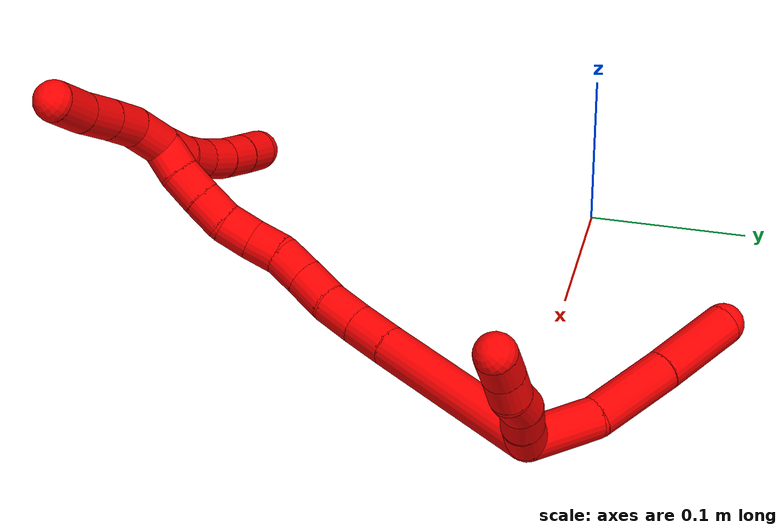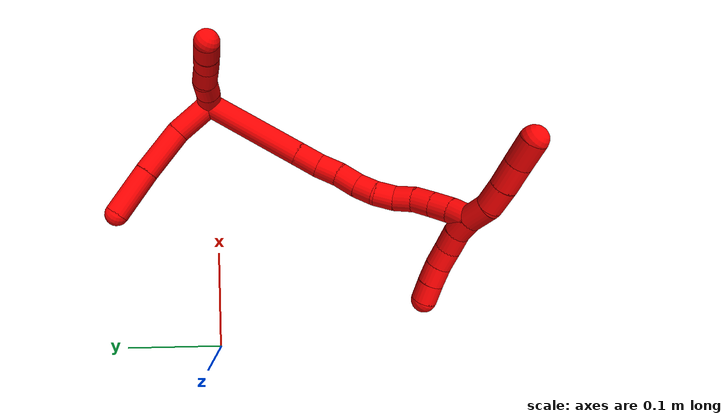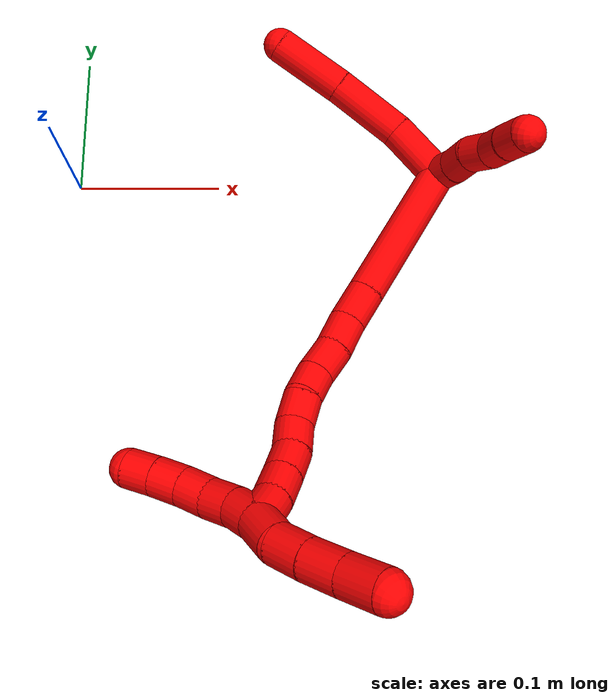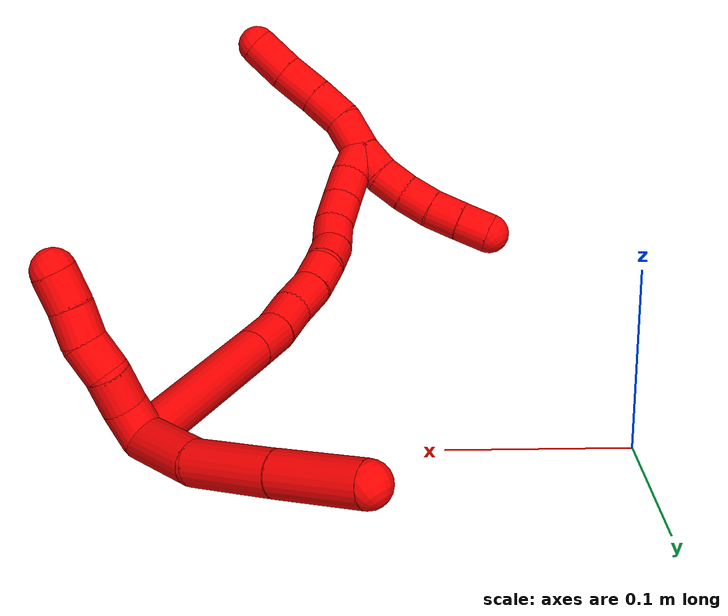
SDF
<sdf version="1.7">
 <world name="default">
  <model name="2">
   <static>0</static>
   <link name="2">
    <collision name="collision-cylinder-e_1_2_8">
     <pose>-0.014547 0.005423 -0.015568 -2.80637 -0.72302 2.3001</pose>
     <geometry><cylinder><radius>0.0125</radius><length>0.043972</length></cylinder></geometry>
     <surface>
      <friction><ode><mu>1.16</mu><mu2>1.16</mu2><slip1>0</slip1><slip2>0</slip2></ode></friction>
      <contact><ode><kp>1e+06</kp><kd>1</kd><max_vel>0</max_vel><min_depth>0.001</min_depth></ode></contact>
     </surface>
    </collision>
    <visual name="visual-cylinder-e_1_2_8">
     <pose>-0.014547 0.005423 -0.015568 -2.80637 -0.72302 2.3001</pose>
     <geometry><cylinder><radius>0.0125</radius><length>0.043972</length></cylinder></geometry>
     <material><ambient>1 0 0 1</ambient></material>
    </visual>
    <collision name="collision-cylinder-e_2_8_9">
     <pose>-0.050276 0.012065 -0.047183 -3.06583 -0.921062 2.9891</pose>
     <geometry><cylinder><radius>0.0125</radius><length>0.053205</length></cylinder></geometry>
     <surface>
      <friction><ode><mu>1.16</mu><mu2>1.16</mu2><slip1>0</slip1><slip2>0</slip2></ode></friction>
      <contact><ode><kp>1e+06</kp><kd>1</kd><max_vel>0</max_vel><min_depth>0.001</min_depth></ode></contact>
     </surface>
    </collision>
    <visual name="visual-cylinder-e_2_8_9">
     <pose>-0.050276 0.012065 -0.047183 -3.06583 -0.921062 2.9891</pose>
     <geometry><cylinder><radius>0.0125</radius><length>0.053205</length></cylinder></geometry>
     <material><ambient>1 0 0 1</ambient></material>
    </visual>
    <collision name="collision-cylinder-e_3_9_6">
     <pose>-0.092477 0.013211 -0.079224 3.13706 -0.920352 -3.13245</pose>
     <geometry><cylinder><radius>0.0125</radius><length>0.052823</length></cylinder></geometry>
     <surface>
      <friction><ode><mu>1.16</mu><mu2>1.16</mu2><slip1>0</slip1><slip2>0</slip2></ode></friction>
      <contact><ode><kp>1e+06</kp><kd>1</kd><max_vel>0</max_vel><min_depth>0.001</min_depth></ode></contact>
     </surface>
    </collision>
    <visual name="visual-cylinder-e_3_9_6">
     <pose>-0.092477 0.013211 -0.079224 3.13706 -0.920352 -3.13245</pose>
     <geometry><cylinder><radius>0.0125</radius><length>0.052823</length></cylinder></geometry>
     <material><ambient>1 0 0 1</ambient></material>
    </visual>
    <collision name="collision-cylinder-e_1_2_10">
     <pose>-0.003016 0.003396 0.008909 -0.364231 -0.306392 0.056854</pose>
     <geometry><cylinder><radius>0.0125</radius><length>0.02</length></cylinder></geometry>
     <surface>
      <friction><ode><mu>1.16</mu><mu2>1.16</mu2><slip1>0</slip1><slip2>0</slip2></ode></friction>
      <contact><ode><kp>1e+06</kp><kd>1</kd><max_vel>0</max_vel><min_depth>0.001</min_depth></ode></contact>
     </surface>
    </collision>
    <visual name="visual-cylinder-e_1_2_10">
     <pose>-0.003016 0.003396 0.008909 -0.364231 -0.306392 0.056854</pose>
     <geometry><cylinder><radius>0.0125</radius><length>0.02</length></cylinder></geometry>
     <material><ambient>1 0 0 1</ambient></material>
    </visual>
    <collision name="collision-cylinder-e_2_10_11">
     <pose>-0.0102 0.010452 0.026139 -0.414233 -0.429856 0.091678</pose>
     <geometry><cylinder><radius>0.0125</radius><length>0.02</length></cylinder></geometry>
     <surface>
      <friction><ode><mu>1.16</mu><mu2>1.16</mu2><slip1>0</slip1><slip2>0</slip2></ode></friction>
      <contact><ode><kp>1e+06</kp><kd>1</kd><max_vel>0</max_vel><min_depth>0.001</min_depth></ode></contact>
     </surface>
    </collision>
    <visual name="visual-cylinder-e_2_10_11">
     <pose>-0.0102 0.010452 0.026139 -0.414233 -0.429856 0.091678</pose>
     <geometry><cylinder><radius>0.0125</radius><length>0.02</length></cylinder></geometry>
     <material><ambient>1 0 0 1</ambient></material>
    </visual>
    <collision name="collision-cylinder-e_3_11_12">
     <pose>-0.015705 0.016692 0.044028 -0.263578 -0.134167 0.017811</pose>
     <geometry><cylinder><radius>0.0125</radius><length>0.02</length></cylinder></geometry>
     <surface>
      <friction><ode><mu>1.16</mu><mu2>1.16</mu2><slip1>0</slip1><slip2>0</slip2></ode></friction>
      <contact><ode><kp>1e+06</kp><kd>1</kd><max_vel>0</max_vel><min_depth>0.001</min_depth></ode></contact>
     </surface>
    </collision>
    <visual name="visual-cylinder-e_3_11_12">
     <pose>-0.015705 0.016692 0.044028 -0.263578 -0.134167 0.017811</pose>
     <geometry><cylinder><radius>0.0125</radius><length>0.02</length></cylinder></geometry>
     <material><ambient>1 0 0 1</ambient></material>
    </visual>
    <collision name="collision-cylinder-e_4_12_13">
     <pose>-0.021189 0.020982 0.062534 -0.188789 -0.427609 0.041107</pose>
     <geometry><cylinder><radius>0.0125</radius><length>0.02</length></cylinder></geometry>
     <surface>
      <friction><ode><mu>1.16</mu><mu2>1.16</mu2><slip1>0</slip1><slip2>0</slip2></ode></friction>
      <contact><ode><kp>1e+06</kp><kd>1</kd><max_vel>0</max_vel><min_depth>0.001</min_depth></ode></contact>
     </surface>
    </collision>
    <visual name="visual-cylinder-e_4_12_13">
     <pose>-0.021189 0.020982 0.062534 -0.188789 -0.427609 0.041107</pose>
     <geometry><cylinder><radius>0.0125</radius><length>0.02</length></cylinder></geometry>
     <material><ambient>1 0 0 1</ambient></material>
    </visual>
    <collision name="collision-cylinder-e_5_13_5">
     <pose>-0.028779 0.024977 0.080578 -0.246112 -0.351461 0.043915</pose>
     <geometry><cylinder><radius>0.0125</radius><length>0.02</length></cylinder></geometry>
     <surface>
      <friction><ode><mu>1.16</mu><mu2>1.16</mu2><slip1>0</slip1><slip2>0</slip2></ode></friction>
      <contact><ode><kp>1e+06</kp><kd>1</kd><max_vel>0</max_vel><min_depth>0.001</min_depth></ode></contact>
     </surface>
    </collision>
    <visual name="visual-cylinder-e_5_13_5">
     <pose>-0.028779 0.024977 0.080578 -0.246112 -0.351461 0.043915</pose>
     <geometry><cylinder><radius>0.0125</radius><length>0.02</length></cylinder></geometry>
     <material><ambient>1 0 0 1</ambient></material>
    </visual>
    <collision name="collision-cylinder-e_1_2_14">
     <pose>-0.005306 -0.052286 0.011813 1.3486 -0.098656 -0.078877</pose>
     <geometry><cylinder><radius>0.0125</radius><length>0.107731</length></cylinder></geometry>
     <surface>
      <friction><ode><mu>1.16</mu><mu2>1.16</mu2><slip1>0</slip1><slip2>0</slip2></ode></friction>
      <contact><ode><kp>1e+06</kp><kd>1</kd><max_vel>0</max_vel><min_depth>0.001</min_depth></ode></contact>
     </surface>
    </collision>
    <visual name="visual-cylinder-e_1_2_14">
     <pose>-0.005306 -0.052286 0.011813 1.3486 -0.098656 -0.078877</pose>
     <geometry><cylinder><radius>0.0125</radius><length>0.107731</length></cylinder></geometry>
     <material><ambient>1 0 0 1</ambient></material>
    </visual>
    <collision name="collision-cylinder-e_2_14_15">
     <pose>-0.012053 -0.116964 0.02655 1.33909 -0.1128 -0.089318</pose>
     <geometry><cylinder><radius>0.0125</radius><length>0.025628</length></cylinder></geometry>
     <surface>
      <friction><ode><mu>1.16</mu><mu2>1.16</mu2><slip1>0</slip1><slip2>0</slip2></ode></friction>
      <contact><ode><kp>1e+06</kp><kd>1</kd><max_vel>0</max_vel><min_depth>0.001</min_depth></ode></contact>
     </surface>
    </collision>
    <visual name="visual-cylinder-e_2_14_15">
     <pose>-0.012053 -0.116964 0.02655 1.33909 -0.1128 -0.089318</pose>
     <geometry><cylinder><radius>0.0125</radius><length>0.025628</length></cylinder></geometry>
     <material><ambient>1 0 0 1</ambient></material>
    </visual>
    <collision name="collision-cylinder-e_3_15_16">
     <pose>-0.015262 -0.139974 0.033925 1.17384 -0.152224 -0.101354</pose>
     <geometry><cylinder><radius>0.0125</radius><length>0.023296</length></cylinder></geometry>
     <surface>
      <friction><ode><mu>1.16</mu><mu2>1.16</mu2><slip1>0</slip1><slip2>0</slip2></ode></friction>
      <contact><ode><kp>1e+06</kp><kd>1</kd><max_vel>0</max_vel><min_depth>0.001</min_depth></ode></contact>
     </surface>
    </collision>
    <visual name="visual-cylinder-e_3_15_16">
     <pose>-0.015262 -0.139974 0.033925 1.17384 -0.152224 -0.101354</pose>
     <geometry><cylinder><radius>0.0125</radius><length>0.023296</length></cylinder></geometry>
     <material><ambient>1 0 0 1</ambient></material>
    </visual>
    <collision name="collision-cylinder-e_4_16_17">
     <pose>-0.020222 -0.161043 0.042016 1.23558 -0.280958 -0.200294</pose>
     <geometry><cylinder><radius>0.0125</radius><length>0.023037</length></cylinder></geometry>
     <surface>
      <friction><ode><mu>1.16</mu><mu2>1.16</mu2><slip1>0</slip1><slip2>0</slip2></ode></friction>
      <contact><ode><kp>1e+06</kp><kd>1</kd><max_vel>0</max_vel><min_depth>0.001</min_depth></ode></contact>
     </surface>
    </collision>
    <visual name="visual-cylinder-e_4_16_17">
     <pose>-0.020222 -0.161043 0.042016 1.23558 -0.280958 -0.200294</pose>
     <geometry><cylinder><radius>0.0125</radius><length>0.023037</length></cylinder></geometry>
     <material><ambient>1 0 0 1</ambient></material>
    </visual>
    <collision name="collision-cylinder-e_5_17_18">
     <pose>-0.026145 -0.179874 0.050472 1.04931 -0.275188 -0.159939</pose>
     <geometry><cylinder><radius>0.0125</radius><length>0.020087</length></cylinder></geometry>
     <surface>
      <friction><ode><mu>1.16</mu><mu2>1.16</mu2><slip1>0</slip1><slip2>0</slip2></ode></friction>
      <contact><ode><kp>1e+06</kp><kd>1</kd><max_vel>0</max_vel><min_depth>0.001</min_depth></ode></contact>
     </surface>
    </collision>
    <visual name="visual-cylinder-e_5_17_18">
     <pose>-0.026145 -0.179874 0.050472 1.04931 -0.275188 -0.159939</pose>
     <geometry><cylinder><radius>0.0125</radius><length>0.020087</length></cylinder></geometry>
     <material><ambient>1 0 0 1</ambient></material>
    </visual>
    <collision name="collision-cylinder-e_6_18_19">
     <pose>-0.029014 -0.19713 0.060081 1.07555 -0.013888 -0.008283</pose>
     <geometry><cylinder><radius>0.0125</radius><length>0.020175</length></cylinder></geometry>
     <surface>
      <friction><ode><mu>1.16</mu><mu2>1.16</mu2><slip1>0</slip1><slip2>0</slip2></ode></friction>
      <contact><ode><kp>1e+06</kp><kd>1</kd><max_vel>0</max_vel><min_depth>0.001</min_depth></ode></contact>
     </surface>
    </collision>
    <visual name="visual-cylinder-e_6_18_19">
     <pose>-0.029014 -0.19713 0.060081 1.07555 -0.013888 -0.008283</pose>
     <geometry><cylinder><radius>0.0125</radius><length>0.020175</length></cylinder></geometry>
     <material><ambient>1 0 0 1</ambient></material>
    </visual>
    <collision name="collision-cylinder-e_7_19_20">
     <pose>-0.02986 -0.213064 0.071933 0.785496 -0.070578 -0.029249</pose>
     <geometry><cylinder><radius>0.0125</radius><length>0.020016</length></cylinder></geometry>
     <surface>
      <friction><ode><mu>1.16</mu><mu2>1.16</mu2><slip1>0</slip1><slip2>0</slip2></ode></friction>
      <contact><ode><kp>1e+06</kp><kd>1</kd><max_vel>0</max_vel><min_depth>0.001</min_depth></ode></contact>
     </surface>
    </collision>
    <visual name="visual-cylinder-e_7_19_20">
     <pose>-0.02986 -0.213064 0.071933 0.785496 -0.070578 -0.029249</pose>
     <geometry><cylinder><radius>0.0125</radius><length>0.020016</length></cylinder></geometry>
     <material><ambient>1 0 0 1</ambient></material>
    </visual>
    <collision name="collision-cylinder-e_8_20_21">
     <pose>-0.03369 -0.227275 0.085254 0.851531 -0.317513 -0.144961</pose>
     <geometry><cylinder><radius>0.0125</radius><length>0.020013</length></cylinder></geometry>
     <surface>
      <friction><ode><mu>1.16</mu><mu2>1.16</mu2><slip1>0</slip1><slip2>0</slip2></ode></friction>
      <contact><ode><kp>1e+06</kp><kd>1</kd><max_vel>0</max_vel><min_depth>0.001</min_depth></ode></contact>
     </surface>
    </collision>
    <visual name="visual-cylinder-e_8_20_21">
     <pose>-0.03369 -0.227275 0.085254 0.851531 -0.317513 -0.144961</pose>
     <geometry><cylinder><radius>0.0125</radius><length>0.020013</length></cylinder></geometry>
     <material><ambient>1 0 0 1</ambient></material>
    </visual>
    <collision name="collision-cylinder-e_9_21_22">
     <pose>-0.040307 -0.241437 0.097742 0.844667 -0.356652 -0.161638</pose>
     <geometry><cylinder><radius>0.0125</radius><length>0.02001</length></cylinder></geometry>
     <surface>
      <friction><ode><mu>1.16</mu><mu2>1.16</mu2><slip1>0</slip1><slip2>0</slip2></ode></friction>
      <contact><ode><kp>1e+06</kp><kd>1</kd><max_vel>0</max_vel><min_depth>0.001</min_depth></ode></contact>
     </surface>
    </collision>
    <visual name="visual-cylinder-e_9_21_22">
     <pose>-0.040307 -0.241437 0.097742 0.844667 -0.356652 -0.161638</pose>
     <geometry><cylinder><radius>0.0125</radius><length>0.02001</length></cylinder></geometry>
     <material><ambient>1 0 0 1</ambient></material>
    </visual>
    <collision name="collision-cylinder-e_10_22_1">
     <pose>-0.048775 -0.255071 0.109577 0.868047 -0.520461 -0.245589</pose>
     <geometry><cylinder><radius>0.0125</radius><length>0.020008</length></cylinder></geometry>
     <surface>
      <friction><ode><mu>1.16</mu><mu2>1.16</mu2><slip1>0</slip1><slip2>0</slip2></ode></friction>
      <contact><ode><kp>1e+06</kp><kd>1</kd><max_vel>0</max_vel><min_depth>0.001</min_depth></ode></contact>
     </surface>
    </collision>
    <visual name="visual-cylinder-e_10_22_1">
     <pose>-0.048775 -0.255071 0.109577 0.868047 -0.520461 -0.245589</pose>
     <geometry><cylinder><radius>0.0125</radius><length>0.020008</length></cylinder></geometry>
     <material><ambient>1 0 0 1</ambient></material>
    </visual>
    <collision name="collision-cylinder-e_1_1_23">
     <pose>-0.054285 -0.262701 0.105252 3.04051 -0.05354 -0.973713</pose>
     <geometry><cylinder><radius>0.0125</radius><length>0.02</length></cylinder></geometry>
     <surface>
      <friction><ode><mu>1.16</mu><mu2>1.16</mu2><slip1>0</slip1><slip2>0</slip2></ode></friction>
      <contact><ode><kp>1e+06</kp><kd>1</kd><max_vel>0</max_vel><min_depth>0.001</min_depth></ode></contact>
     </surface>
    </collision>
    <visual name="visual-cylinder-e_1_1_23">
     <pose>-0.054285 -0.262701 0.105252 3.04051 -0.05354 -0.973713</pose>
     <geometry><cylinder><radius>0.0125</radius><length>0.02</length></cylinder></geometry>
     <material><ambient>1 0 0 1</ambient></material>
    </visual>
    <collision name="collision-cylinder-e_2_23_24">
     <pose>-0.056809 -0.266389 0.085891 2.86459 -0.200222 -1.24882</pose>
     <geometry><cylinder><radius>0.0125</radius><length>0.02</length></cylinder></geometry>
     <surface>
      <friction><ode><mu>1.16</mu><mu2>1.16</mu2><slip1>0</slip1><slip2>0</slip2></ode></friction>
      <contact><ode><kp>1e+06</kp><kd>1</kd><max_vel>0</max_vel><min_depth>0.001</min_depth></ode></contact>
     </surface>
    </collision>
    <visual name="visual-cylinder-e_2_23_24">
     <pose>-0.056809 -0.266389 0.085891 2.86459 -0.200222 -1.24882</pose>
     <geometry><cylinder><radius>0.0125</radius><length>0.02</length></cylinder></geometry>
     <material><ambient>1 0 0 1</ambient></material>
    </visual>
    <collision name="collision-cylinder-e_3_24_25">
     <pose>-0.062145 -0.271246 0.067295 2.9085 -0.341272 -1.948</pose>
     <geometry><cylinder><radius>0.0125</radius><length>0.02</length></cylinder></geometry>
     <surface>
      <friction><ode><mu>1.16</mu><mu2>1.16</mu2><slip1>0</slip1><slip2>0</slip2></ode></friction>
      <contact><ode><kp>1e+06</kp><kd>1</kd><max_vel>0</max_vel><min_depth>0.001</min_depth></ode></contact>
     </surface>
    </collision>
    <visual name="visual-cylinder-e_3_24_25">
     <pose>-0.062145 -0.271246 0.067295 2.9085 -0.341272 -1.948</pose>
     <geometry><cylinder><radius>0.0125</radius><length>0.02</length></cylinder></geometry>
     <material><ambient>1 0 0 1</ambient></material>
    </visual>
    <collision name="collision-cylinder-e_4_25_26">
     <pose>-0.069742 -0.276251 0.049528 2.82378 -0.438982 -1.8957</pose>
     <geometry><cylinder><radius>0.0125</radius><length>0.02</length></cylinder></geometry>
     <surface>
      <friction><ode><mu>1.16</mu><mu2>1.16</mu2><slip1>0</slip1><slip2>0</slip2></ode></friction>
      <contact><ode><kp>1e+06</kp><kd>1</kd><max_vel>0</max_vel><min_depth>0.001</min_depth></ode></contact>
     </surface>
    </collision>
    <visual name="visual-cylinder-e_4_25_26">
     <pose>-0.069742 -0.276251 0.049528 2.82378 -0.438982 -1.8957</pose>
     <geometry><cylinder><radius>0.0125</radius><length>0.02</length></cylinder></geometry>
     <material><ambient>1 0 0 1</ambient></material>
    </visual>
    <collision name="collision-cylinder-e_5_26_4">
     <pose>-0.078211 -0.282324 0.032464 2.77561 -0.435541 -1.74859</pose>
     <geometry><cylinder><radius>0.0125</radius><length>0.02</length></cylinder></geometry>
     <surface>
      <friction><ode><mu>1.16</mu><mu2>1.16</mu2><slip1>0</slip1><slip2>0</slip2></ode></friction>
      <contact><ode><kp>1e+06</kp><kd>1</kd><max_vel>0</max_vel><min_depth>0.001</min_depth></ode></contact>
     </surface>
    </collision>
    <visual name="visual-cylinder-e_5_26_4">
     <pose>-0.078211 -0.282324 0.032464 2.77561 -0.435541 -1.74859</pose>
     <geometry><cylinder><radius>0.0125</radius><length>0.02</length></cylinder></geometry>
     <material><ambient>1 0 0 1</ambient></material>
    </visual>
    <collision name="collision-cylinder-e_1_1_27">
     <pose>-0.054331 -0.262612 0.127545 0.074201 -0.046841 -0.001739</pose>
     <geometry><cylinder><radius>0.0125</radius><length>0.024812</length></cylinder></geometry>
     <surface>
      <friction><ode><mu>1.16</mu><mu2>1.16</mu2><slip1>0</slip1><slip2>0</slip2></ode></friction>
      <contact><ode><kp>1e+06</kp><kd>1</kd><max_vel>0</max_vel><min_depth>0.001</min_depth></ode></contact>
     </surface>
    </collision>
    <visual name="visual-cylinder-e_1_1_27">
     <pose>-0.054331 -0.262612 0.127545 0.074201 -0.046841 -0.001739</pose>
     <geometry><cylinder><radius>0.0125</radius><length>0.024812</length></cylinder></geometry>
     <material><ambient>1 0 0 1</ambient></material>
    </visual>
    <collision name="collision-cylinder-e_2_27_28">
     <pose>-0.053107 -0.261328 0.151477 -0.188099 0.151997 -0.014365</pose>
     <geometry><cylinder><radius>0.0125</radius><length>0.023838</length></cylinder></geometry>
     <surface>
      <friction><ode><mu>1.16</mu><mu2>1.16</mu2><slip1>0</slip1><slip2>0</slip2></ode></friction>
      <contact><ode><kp>1e+06</kp><kd>1</kd><max_vel>0</max_vel><min_depth>0.001</min_depth></ode></contact>
     </surface>
    </collision>
    <visual name="visual-cylinder-e_2_27_28">
     <pose>-0.053107 -0.261328 0.151477 -0.188099 0.151997 -0.014365</pose>
     <geometry><cylinder><radius>0.0125</radius><length>0.023838</length></cylinder></geometry>
     <material><ambient>1 0 0 1</ambient></material>
    </visual>
    <collision name="collision-cylinder-e_3_28_29">
     <pose>-0.049102 -0.256151 0.175098 -0.242024 0.175431 -0.021388</pose>
     <geometry><cylinder><radius>0.0125</radius><length>0.025205</length></cylinder></geometry>
     <surface>
      <friction><ode><mu>1.16</mu><mu2>1.16</mu2><slip1>0</slip1><slip2>0</slip2></ode></friction>
      <contact><ode><kp>1e+06</kp><kd>1</kd><max_vel>0</max_vel><min_depth>0.001</min_depth></ode></contact>
     </surface>
    </collision>
    <visual name="visual-cylinder-e_3_28_29">
     <pose>-0.049102 -0.256151 0.175098 -0.242024 0.175431 -0.021388</pose>
     <geometry><cylinder><radius>0.0125</radius><length>0.025205</length></cylinder></geometry>
     <material><ambient>1 0 0 1</ambient></material>
    </visual>
    <collision name="collision-cylinder-e_4_29_3">
     <pose>-0.045765 -0.249949 0.199762 -0.250449 0.08714 -0.010976</pose>
     <geometry><cylinder><radius>0.0125</radius><length>0.026145</length></cylinder></geometry>
     <surface>
      <friction><ode><mu>1.16</mu><mu2>1.16</mu2><slip1>0</slip1><slip2>0</slip2></ode></friction>
      <contact><ode><kp>1e+06</kp><kd>1</kd><max_vel>0</max_vel><min_depth>0.001</min_depth></ode></contact>
     </surface>
    </collision>
    <visual name="visual-cylinder-e_4_29_3">
     <pose>-0.045765 -0.249949 0.199762 -0.250449 0.08714 -0.010976</pose>
     <geometry><cylinder><radius>0.0125</radius><length>0.026145</length></cylinder></geometry>
     <material><ambient>1 0 0 1</ambient></material>
    </visual>
    <collision name="collision-sphere-3">
     <pose>-0.044628 -0.246722 0.212379 0 -0 0</pose>
     <geometry><sphere><radius>0.0125</radius></sphere></geometry>
     <surface>
      <friction><ode><mu>1.16</mu><mu2>1.16</mu2><slip1>0</slip1><slip2>0</slip2></ode></friction>
      <contact><ode><kp>1e+06</kp><kd>1</kd><max_vel>0</max_vel><min_depth>0.001</min_depth></ode></contact>
     </surface>
    </collision>
    <visual name="visual-sphere-3">
     <pose>-0.044628 -0.246722 0.212379 0 -0 0</pose>
     <geometry><sphere><radius>0.0125</radius></sphere></geometry>
     <material><ambient>1 0 0 1</ambient></material>
    </visual>
    <collision name="collision-sphere-29">
     <pose>-0.046903 -0.253177 0.187146 0 -0 0</pose>
     <geometry><sphere><radius>0.0125</radius></sphere></geometry>
     <surface>
      <friction><ode><mu>1.16</mu><mu2>1.16</mu2><slip1>0</slip1><slip2>0</slip2></ode></friction>
      <contact><ode><kp>1e+06</kp><kd>1</kd><max_vel>0</max_vel><min_depth>0.001</min_depth></ode></contact>
     </surface>
    </collision>
    <visual name="visual-sphere-29">
     <pose>-0.046903 -0.253177 0.187146 0 -0 0</pose>
     <geometry><sphere><radius>0.0125</radius></sphere></geometry>
     <material><ambient>1 0 0 1</ambient></material>
    </visual>
    <collision name="collision-sphere-28">
     <pose>-0.051302 -0.259125 0.163051 0 -0 0</pose>
     <geometry><sphere><radius>0.0125</radius></sphere></geometry>
     <surface>
      <friction><ode><mu>1.16</mu><mu2>1.16</mu2><slip1>0</slip1><slip2>0</slip2></ode></friction>
      <contact><ode><kp>1e+06</kp><kd>1</kd><max_vel>0</max_vel><min_depth>0.001</min_depth></ode></contact>
     </surface>
    </collision>
    <visual name="visual-sphere-28">
     <pose>-0.051302 -0.259125 0.163051 0 -0 0</pose>
     <geometry><sphere><radius>0.0125</radius></sphere></geometry>
     <material><ambient>1 0 0 1</ambient></material>
    </visual>
    <collision name="collision-sphere-27">
     <pose>-0.054911 -0.263531 0.139903 0 -0 0</pose>
     <geometry><sphere><radius>0.0125</radius></sphere></geometry>
     <surface>
      <friction><ode><mu>1.16</mu><mu2>1.16</mu2><slip1>0</slip1><slip2>0</slip2></ode></friction>
      <contact><ode><kp>1e+06</kp><kd>1</kd><max_vel>0</max_vel><min_depth>0.001</min_depth></ode></contact>
     </surface>
    </collision>
    <visual name="visual-sphere-27">
     <pose>-0.054911 -0.263531 0.139903 0 -0 0</pose>
     <geometry><sphere><radius>0.0125</radius></sphere></geometry>
     <material><ambient>1 0 0 1</ambient></material>
    </visual>
    <collision name="collision-sphere-4">
     <pose>-0.08243 -0.285569 0.023998 0 -0 0</pose>
     <geometry><sphere><radius>0.0125</radius></sphere></geometry>
     <surface>
      <friction><ode><mu>1.16</mu><mu2>1.16</mu2><slip1>0</slip1><slip2>0</slip2></ode></friction>
      <contact><ode><kp>1e+06</kp><kd>1</kd><max_vel>0</max_vel><min_depth>0.001</min_depth></ode></contact>
     </surface>
    </collision>
    <visual name="visual-sphere-4">
     <pose>-0.08243 -0.285569 0.023998 0 -0 0</pose>
     <geometry><sphere><radius>0.0125</radius></sphere></geometry>
     <material><ambient>1 0 0 1</ambient></material>
    </visual>
    <collision name="collision-sphere-26">
     <pose>-0.073992 -0.27908 0.04093 0 -0 0</pose>
     <geometry><sphere><radius>0.0125</radius></sphere></geometry>
     <surface>
      <friction><ode><mu>1.16</mu><mu2>1.16</mu2><slip1>0</slip1><slip2>0</slip2></ode></friction>
      <contact><ode><kp>1e+06</kp><kd>1</kd><max_vel>0</max_vel><min_depth>0.001</min_depth></ode></contact>
     </surface>
    </collision>
    <visual name="visual-sphere-26">
     <pose>-0.073992 -0.27908 0.04093 0 -0 0</pose>
     <geometry><sphere><radius>0.0125</radius></sphere></geometry>
     <material><ambient>1 0 0 1</ambient></material>
    </visual>
    <collision name="collision-sphere-25">
     <pose>-0.065491 -0.273422 0.058127 0 -0 0</pose>
     <geometry><sphere><radius>0.0125</radius></sphere></geometry>
     <surface>
      <friction><ode><mu>1.16</mu><mu2>1.16</mu2><slip1>0</slip1><slip2>0</slip2></ode></friction>
      <contact><ode><kp>1e+06</kp><kd>1</kd><max_vel>0</max_vel><min_depth>0.001</min_depth></ode></contact>
     </surface>
    </collision>
    <visual name="visual-sphere-25">
     <pose>-0.065491 -0.273422 0.058127 0 -0 0</pose>
     <geometry><sphere><radius>0.0125</radius></sphere></geometry>
     <material><ambient>1 0 0 1</ambient></material>
    </visual>
    <collision name="collision-sphere-24">
     <pose>-0.058798 -0.269069 0.076464 0 -0 0</pose>
     <geometry><sphere><radius>0.0125</radius></sphere></geometry>
     <surface>
      <friction><ode><mu>1.16</mu><mu2>1.16</mu2><slip1>0</slip1><slip2>0</slip2></ode></friction>
      <contact><ode><kp>1e+06</kp><kd>1</kd><max_vel>0</max_vel><min_depth>0.001</min_depth></ode></contact>
     </surface>
    </collision>
    <visual name="visual-sphere-24">
     <pose>-0.058798 -0.269069 0.076464 0 -0 0</pose>
     <geometry><sphere><radius>0.0125</radius></sphere></geometry>
     <material><ambient>1 0 0 1</ambient></material>
    </visual>
    <collision name="collision-sphere-23">
     <pose>-0.05482 -0.263709 0.095317 0 -0 0</pose>
     <geometry><sphere><radius>0.0125</radius></sphere></geometry>
     <surface>
      <friction><ode><mu>1.16</mu><mu2>1.16</mu2><slip1>0</slip1><slip2>0</slip2></ode></friction>
      <contact><ode><kp>1e+06</kp><kd>1</kd><max_vel>0</max_vel><min_depth>0.001</min_depth></ode></contact>
     </surface>
    </collision>
    <visual name="visual-sphere-23">
     <pose>-0.05482 -0.263709 0.095317 0 -0 0</pose>
     <geometry><sphere><radius>0.0125</radius></sphere></geometry>
     <material><ambient>1 0 0 1</ambient></material>
    </visual>
    <collision name="collision-sphere-1">
     <pose>-0.05375 -0.261694 0.115187 0 -0 0</pose>
     <geometry><sphere><radius>0.0125</radius></sphere></geometry>
     <surface>
      <friction><ode><mu>1.16</mu><mu2>1.16</mu2><slip1>0</slip1><slip2>0</slip2></ode></friction>
      <contact><ode><kp>1e+06</kp><kd>1</kd><max_vel>0</max_vel><min_depth>0.001</min_depth></ode></contact>
     </surface>
    </collision>
    <visual name="visual-sphere-1">
     <pose>-0.05375 -0.261694 0.115187 0 -0 0</pose>
     <geometry><sphere><radius>0.0125</radius></sphere></geometry>
     <material><ambient>1 0 0 1</ambient></material>
    </visual>
    <collision name="collision-sphere-22">
     <pose>-0.0438 -0.248448 0.103968 0 -0 0</pose>
     <geometry><sphere><radius>0.0125</radius></sphere></geometry>
     <surface>
      <friction><ode><mu>1.16</mu><mu2>1.16</mu2><slip1>0</slip1><slip2>0</slip2></ode></friction>
      <contact><ode><kp>1e+06</kp><kd>1</kd><max_vel>0</max_vel><min_depth>0.001</min_depth></ode></contact>
     </surface>
    </collision>
    <visual name="visual-sphere-22">
     <pose>-0.0438 -0.248448 0.103968 0 -0 0</pose>
     <geometry><sphere><radius>0.0125</radius></sphere></geometry>
     <material><ambient>1 0 0 1</ambient></material>
    </visual>
    <collision name="collision-sphere-21">
     <pose>-0.036814 -0.234427 0.091517 0 -0 0</pose>
     <geometry><sphere><radius>0.0125</radius></sphere></geometry>
     <surface>
      <friction><ode><mu>1.16</mu><mu2>1.16</mu2><slip1>0</slip1><slip2>0</slip2></ode></friction>
      <contact><ode><kp>1e+06</kp><kd>1</kd><max_vel>0</max_vel><min_depth>0.001</min_depth></ode></contact>
     </surface>
    </collision>
    <visual name="visual-sphere-21">
     <pose>-0.036814 -0.234427 0.091517 0 -0 0</pose>
     <geometry><sphere><radius>0.0125</radius></sphere></geometry>
     <material><ambient>1 0 0 1</ambient></material>
    </visual>
    <collision name="collision-sphere-11">
     <pose>-0.014367 0.01411 0.034461 0 -0 0</pose>
     <geometry><sphere><radius>0.0125</radius></sphere></geometry>
     <surface>
      <friction><ode><mu>1.16</mu><mu2>1.16</mu2><slip1>0</slip1><slip2>0</slip2></ode></friction>
      <contact><ode><kp>1e+06</kp><kd>1</kd><max_vel>0</max_vel><min_depth>0.001</min_depth></ode></contact>
     </surface>
    </collision>
    <visual name="visual-sphere-11">
     <pose>-0.014367 0.01411 0.034461 0 -0 0</pose>
     <geometry><sphere><radius>0.0125</radius></sphere></geometry>
     <material><ambient>1 0 0 1</ambient></material>
    </visual>
    <collision name="collision-sphere-10">
     <pose>-0.006032 0.006793 0.017818 0 -0 0</pose>
     <geometry><sphere><radius>0.0125</radius></sphere></geometry>
     <surface>
      <friction><ode><mu>1.16</mu><mu2>1.16</mu2><slip1>0</slip1><slip2>0</slip2></ode></friction>
      <contact><ode><kp>1e+06</kp><kd>1</kd><max_vel>0</max_vel><min_depth>0.001</min_depth></ode></contact>
     </surface>
    </collision>
    <visual name="visual-sphere-10">
     <pose>-0.006032 0.006793 0.017818 0 -0 0</pose>
     <geometry><sphere><radius>0.0125</radius></sphere></geometry>
     <material><ambient>1 0 0 1</ambient></material>
    </visual>
    <collision name="collision-sphere-6">
     <pose>-0.113496 0.013138 -0.095217 0 -0 0</pose>
     <geometry><sphere><radius>0.0125</radius></sphere></geometry>
     <surface>
      <friction><ode><mu>1.16</mu><mu2>1.16</mu2><slip1>0</slip1><slip2>0</slip2></ode></friction>
      <contact><ode><kp>1e+06</kp><kd>1</kd><max_vel>0</max_vel><min_depth>0.001</min_depth></ode></contact>
     </surface>
    </collision>
    <visual name="visual-sphere-6">
     <pose>-0.113496 0.013138 -0.095217 0 -0 0</pose>
     <geometry><sphere><radius>0.0125</radius></sphere></geometry>
     <material><ambient>1 0 0 1</ambient></material>
    </visual>
    <collision name="collision-sphere-9">
     <pose>-0.071458 0.013283 -0.063231 0 -0 0</pose>
     <geometry><sphere><radius>0.0125</radius></sphere></geometry>
     <surface>
      <friction><ode><mu>1.16</mu><mu2>1.16</mu2><slip1>0</slip1><slip2>0</slip2></ode></friction>
      <contact><ode><kp>1e+06</kp><kd>1</kd><max_vel>0</max_vel><min_depth>0.001</min_depth></ode></contact>
     </surface>
    </collision>
    <visual name="visual-sphere-9">
     <pose>-0.071458 0.013283 -0.063231 0 -0 0</pose>
     <geometry><sphere><radius>0.0125</radius></sphere></geometry>
     <material><ambient>1 0 0 1</ambient></material>
    </visual>
    <collision name="collision-sphere-2">
     <geometry><sphere><radius>0.0125</radius></sphere></geometry>
     <surface>
      <friction><ode><mu>1.16</mu><mu2>1.16</mu2><slip1>0</slip1><slip2>0</slip2></ode></friction>
      <contact><ode><kp>1e+06</kp><kd>1</kd><max_vel>0</max_vel><min_depth>0.001</min_depth></ode></contact>
     </surface>
    </collision>
    <visual name="visual-sphere-2">
     <geometry><sphere><radius>0.0125</radius></sphere></geometry>
     <material><ambient>1 0 0 1</ambient></material>
    </visual>
    <collision name="collision-sphere-19">
     <pose>-0.029154 -0.206004 0.064874 0 -0 0</pose>
     <geometry><sphere><radius>0.0125</radius></sphere></geometry>
     <surface>
      <friction><ode><mu>1.16</mu><mu2>1.16</mu2><slip1>0</slip1><slip2>0</slip2></ode></friction>
      <contact><ode><kp>1e+06</kp><kd>1</kd><max_vel>0</max_vel><min_depth>0.001</min_depth></ode></contact>
     </surface>
    </collision>
    <visual name="visual-sphere-19">
     <pose>-0.029154 -0.206004 0.064874 0 -0 0</pose>
     <geometry><sphere><radius>0.0125</radius></sphere></geometry>
     <material><ambient>1 0 0 1</ambient></material>
    </visual>
    <collision name="collision-sphere-8">
     <pose>-0.029094 0.010847 -0.031135 0 -0 0</pose>
     <geometry><sphere><radius>0.0125</radius></sphere></geometry>
     <surface>
      <friction><ode><mu>1.16</mu><mu2>1.16</mu2><slip1>0</slip1><slip2>0</slip2></ode></friction>
      <contact><ode><kp>1e+06</kp><kd>1</kd><max_vel>0</max_vel><min_depth>0.001</min_depth></ode></contact>
     </surface>
    </collision>
    <visual name="visual-sphere-8">
     <pose>-0.029094 0.010847 -0.031135 0 -0 0</pose>
     <geometry><sphere><radius>0.0125</radius></sphere></geometry>
     <material><ambient>1 0 0 1</ambient></material>
    </visual>
    <collision name="collision-sphere-12">
     <pose>-0.017043 0.019274 0.053596 0 -0 0</pose>
     <geometry><sphere><radius>0.0125</radius></sphere></geometry>
     <surface>
      <friction><ode><mu>1.16</mu><mu2>1.16</mu2><slip1>0</slip1><slip2>0</slip2></ode></friction>
      <contact><ode><kp>1e+06</kp><kd>1</kd><max_vel>0</max_vel><min_depth>0.001</min_depth></ode></contact>
     </surface>
    </collision>
    <visual name="visual-sphere-12">
     <pose>-0.017043 0.019274 0.053596 0 -0 0</pose>
     <geometry><sphere><radius>0.0125</radius></sphere></geometry>
     <material><ambient>1 0 0 1</ambient></material>
    </visual>
    <collision name="collision-sphere-13">
     <pose>-0.025336 0.02269 0.071472 0 -0 0</pose>
     <geometry><sphere><radius>0.0125</radius></sphere></geometry>
     <surface>
      <friction><ode><mu>1.16</mu><mu2>1.16</mu2><slip1>0</slip1><slip2>0</slip2></ode></friction>
      <contact><ode><kp>1e+06</kp><kd>1</kd><max_vel>0</max_vel><min_depth>0.001</min_depth></ode></contact>
     </surface>
    </collision>
    <visual name="visual-sphere-13">
     <pose>-0.025336 0.02269 0.071472 0 -0 0</pose>
     <geometry><sphere><radius>0.0125</radius></sphere></geometry>
     <material><ambient>1 0 0 1</ambient></material>
    </visual>
    <collision name="collision-sphere-5">
     <pose>-0.032222 0.027264 0.089684 0 -0 0</pose>
     <geometry><sphere><radius>0.0125</radius></sphere></geometry>
     <surface>
      <friction><ode><mu>1.16</mu><mu2>1.16</mu2><slip1>0</slip1><slip2>0</slip2></ode></friction>
      <contact><ode><kp>1e+06</kp><kd>1</kd><max_vel>0</max_vel><min_depth>0.001</min_depth></ode></contact>
     </surface>
    </collision>
    <visual name="visual-sphere-5">
     <pose>-0.032222 0.027264 0.089684 0 -0 0</pose>
     <geometry><sphere><radius>0.0125</radius></sphere></geometry>
     <material><ambient>1 0 0 1</ambient></material>
    </visual>
    <collision name="collision-sphere-14">
     <pose>-0.010611 -0.104571 0.023626 0 -0 0</pose>
     <geometry><sphere><radius>0.0125</radius></sphere></geometry>
     <surface>
      <friction><ode><mu>1.16</mu><mu2>1.16</mu2><slip1>0</slip1><slip2>0</slip2></ode></friction>
      <contact><ode><kp>1e+06</kp><kd>1</kd><max_vel>0</max_vel><min_depth>0.001</min_depth></ode></contact>
     </surface>
    </collision>
    <visual name="visual-sphere-14">
     <pose>-0.010611 -0.104571 0.023626 0 -0 0</pose>
     <geometry><sphere><radius>0.0125</radius></sphere></geometry>
     <material><ambient>1 0 0 1</ambient></material>
    </visual>
    <collision name="collision-sphere-15">
     <pose>-0.013496 -0.129356 0.029473 0 -0 0</pose>
     <geometry><sphere><radius>0.0125</radius></sphere></geometry>
     <surface>
      <friction><ode><mu>1.16</mu><mu2>1.16</mu2><slip1>0</slip1><slip2>0</slip2></ode></friction>
      <contact><ode><kp>1e+06</kp><kd>1</kd><max_vel>0</max_vel><min_depth>0.001</min_depth></ode></contact>
     </surface>
    </collision>
    <visual name="visual-sphere-15">
     <pose>-0.013496 -0.129356 0.029473 0 -0 0</pose>
     <geometry><sphere><radius>0.0125</radius></sphere></geometry>
     <material><ambient>1 0 0 1</ambient></material>
    </visual>
    <collision name="collision-sphere-16">
     <pose>-0.017028 -0.150592 0.038376 0 -0 0</pose>
     <geometry><sphere><radius>0.0125</radius></sphere></geometry>
     <surface>
      <friction><ode><mu>1.16</mu><mu2>1.16</mu2><slip1>0</slip1><slip2>0</slip2></ode></friction>
      <contact><ode><kp>1e+06</kp><kd>1</kd><max_vel>0</max_vel><min_depth>0.001</min_depth></ode></contact>
     </surface>
    </collision>
    <visual name="visual-sphere-16">
     <pose>-0.017028 -0.150592 0.038376 0 -0 0</pose>
     <geometry><sphere><radius>0.0125</radius></sphere></geometry>
     <material><ambient>1 0 0 1</ambient></material>
    </visual>
    <collision name="collision-sphere-17">
     <pose>-0.023416 -0.171494 0.045657 0 -0 0</pose>
     <geometry><sphere><radius>0.0125</radius></sphere></geometry>
     <surface>
      <friction><ode><mu>1.16</mu><mu2>1.16</mu2><slip1>0</slip1><slip2>0</slip2></ode></friction>
      <contact><ode><kp>1e+06</kp><kd>1</kd><max_vel>0</max_vel><min_depth>0.001</min_depth></ode></contact>
     </surface>
    </collision>
    <visual name="visual-sphere-17">
     <pose>-0.023416 -0.171494 0.045657 0 -0 0</pose>
     <geometry><sphere><radius>0.0125</radius></sphere></geometry>
     <material><ambient>1 0 0 1</ambient></material>
    </visual>
    <collision name="collision-sphere-18">
     <pose>-0.028874 -0.188255 0.055287 0 -0 0</pose>
     <geometry><sphere><radius>0.0125</radius></sphere></geometry>
     <surface>
      <friction><ode><mu>1.16</mu><mu2>1.16</mu2><slip1>0</slip1><slip2>0</slip2></ode></friction>
      <contact><ode><kp>1e+06</kp><kd>1</kd><max_vel>0</max_vel><min_depth>0.001</min_depth></ode></contact>
     </surface>
    </collision>
    <visual name="visual-sphere-18">
     <pose>-0.028874 -0.188255 0.055287 0 -0 0</pose>
     <geometry><sphere><radius>0.0125</radius></sphere></geometry>
     <material><ambient>1 0 0 1</ambient></material>
    </visual>
    <collision name="collision-sphere-20">
     <pose>-0.030566 -0.220124 0.078991 0 -0 0</pose>
     <geometry><sphere><radius>0.0125</radius></sphere></geometry>
     <surface>
      <friction><ode><mu>1.16</mu><mu2>1.16</mu2><slip1>0</slip1><slip2>0</slip2></ode></friction>
      <contact><ode><kp>1e+06</kp><kd>1</kd><max_vel>0</max_vel><min_depth>0.001</min_depth></ode></contact>
     </surface>
    </collision>
    <visual name="visual-sphere-20">
     <pose>-0.030566 -0.220124 0.078991 0 -0 0</pose>
     <geometry><sphere><radius>0.0125</radius></sphere></geometry>
     <material><ambient>1 0 0 1</ambient></material>
    </visual>
    <inertial>
     <pose>-0.036155 -0.122328 0.044688 0 -0 0</pose>
     <mass>0.75</mass>
     <inertia><ixx>8.9e-05</ixx><ixy>0</ixy><ixz>0</ixz><iyy>5.6e-05</iyy><iyz>0</iyz><izz>0.000169</izz></inertia>
    </inertial>
   </link>
   <pose>0.258065 0.006164 0.012477 0.164774 0.795419 -0.504038</pose>
  </model>
 </world>
</sdf>
